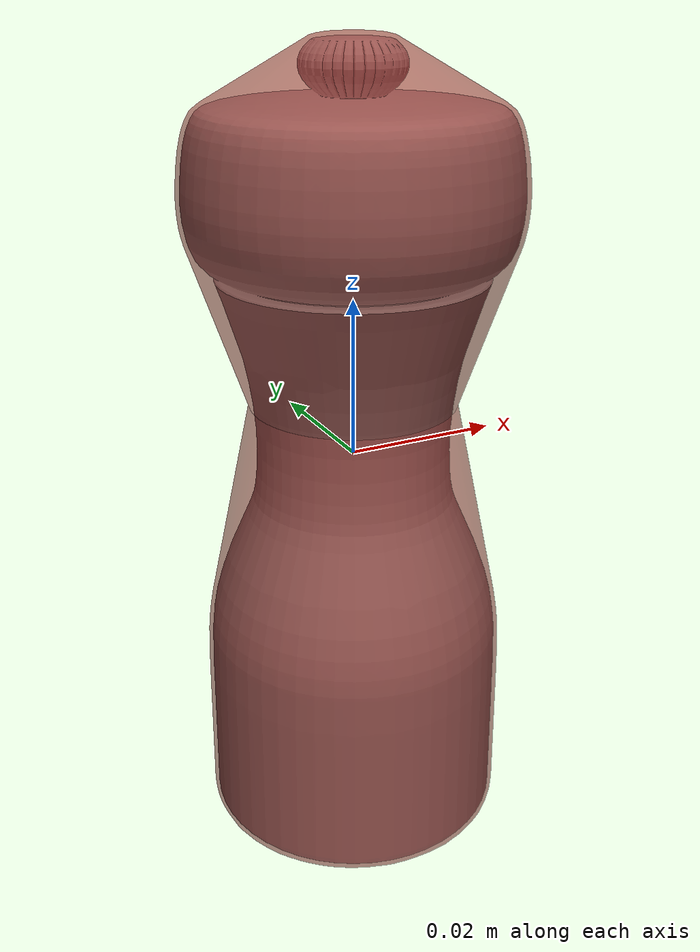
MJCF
<mujoco model="model">
  <option timestep="0.002" gravity="0.0 0.0 -9.81"/>
  <compiler angle="radian"/>
  <asset>
    <mesh file="visual/SaltShaker011.obj" name="SaltShaker011_vis"/>
    <texture file="visual/T_BC001.png" name="SaltShaker011_material" type="2d"/>
    <material name="SaltShaker011_material" rgba="1 1 1 1.0" texture="SaltShaker011_material" shininess="0.4472135901451111" specular="0.3103448502657381"/>
    <mesh file="collision/collision_mesh_collision_0.obj" name="SaltShaker011_collision_mesh_0"/>
    <mesh file="collision/collision_mesh_collision_1.obj" name="SaltShaker011_collision_mesh_1"/>
  </asset>
  <default>
    <default class="visual">
      <geom conaffinity="0" contype="0" group="1" type="mesh"/>
    </default>
    <default class="collision">
      <geom group="0" rgba="0.5 0 0 0.5" density="1000.0"/>
    </default>
    <default class="spawn">
      <geom group="0" rgba="1 1 1 0.5" contype="0" conaffinity="0"/>
      <site group="0" rgba="1 1 1 0.5"/>
    </default>
    <default class="region">
      <geom group="1" conaffinity="0" contype="0" rgba="0 1 0 0" mass="0"/>
    </default>
  </default>
  <worldbody>
    <body>
      <body name="object">
        <geom mesh="SaltShaker011_vis" type="mesh" solimp="0.998 0.998 0.001" solref="0.001 1" friction="0.95 0.3 0.1" class="visual" material="SaltShaker011_material"/>
        <geom class="region" name="reg_bbox" type="box" pos="0.0 0.0 -9.439999999999449e-06" size="0.02052329 0.02052329 0.05054056"/>
        <geom mesh="SaltShaker011_collision_mesh_0" type="mesh" class="collision"/>
        <geom mesh="SaltShaker011_collision_mesh_1" type="mesh" class="collision"/>
      </body>
      <site rgba="0 1 0 0" size="0.005" pos="0.0767095999999999 0 0" name="anchor_site"/>
    </body>
  </worldbody>
  <actuator/>
</mujoco>
